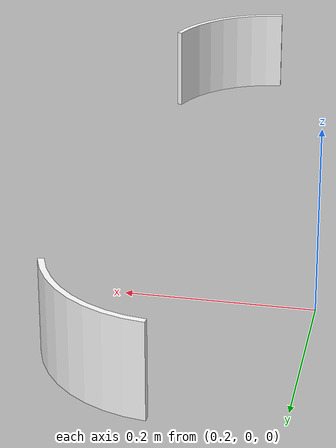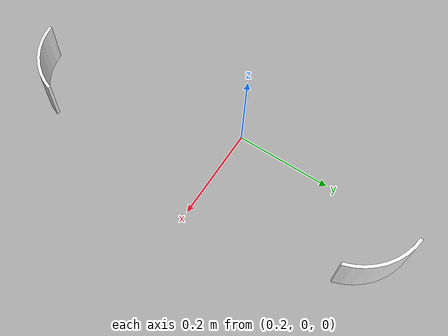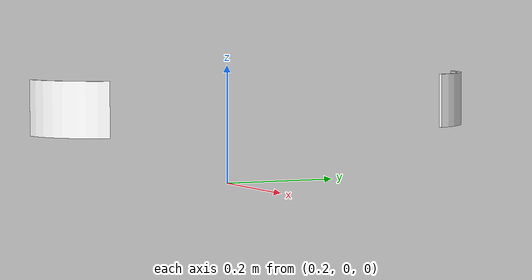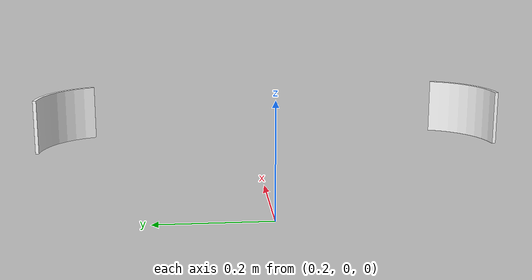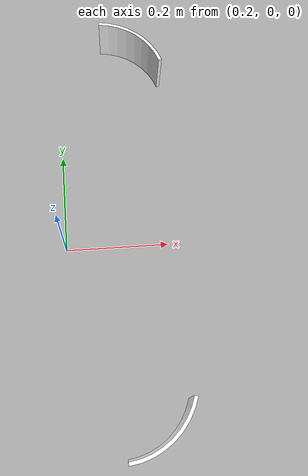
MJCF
<mujoco model="lights">
  <default>
    <default class="visual">
      <geom group="2" type="mesh" contype="0" conaffinity="0"/>
    </default>
    <default class="collision">
      <geom group="3" type="mesh"/>
    </default>
  </default>
  <asset>
    <material name="mtl_lights" specular="0.20000000000000004" shininess="1.0" rgba="1.00000000 1.00000000 1.00000000 1.0"/>
    <mesh file="lights.obj"/>
  </asset>
  <worldbody>
    <body name="lights">
      <geom material="mtl_lights" mesh="lights" class="visual"/>
      <geom mesh="lights" class="collision"/>
    </body>
  </worldbody>
</mujoco>
